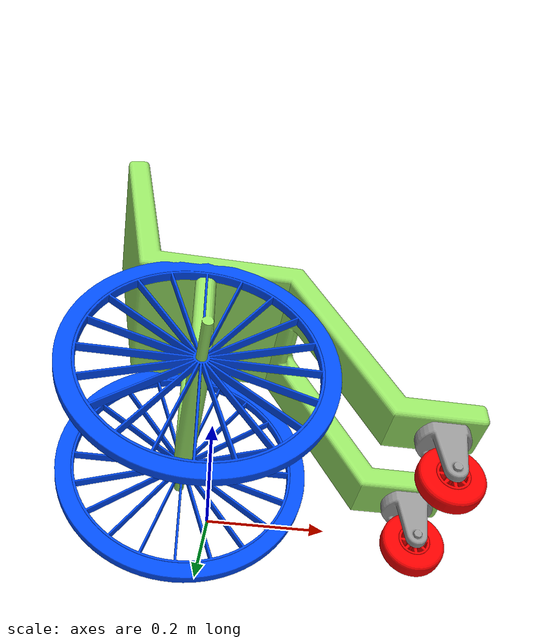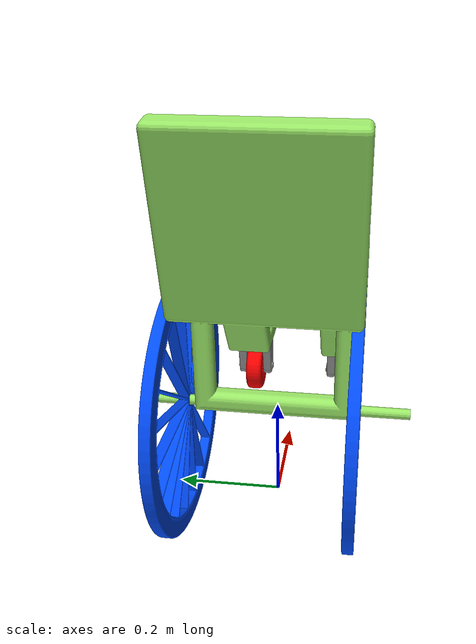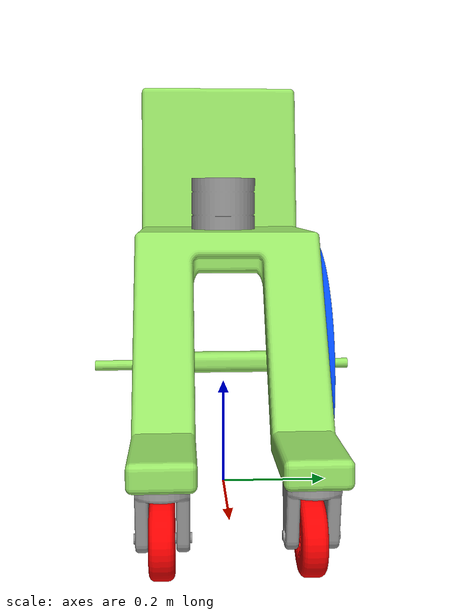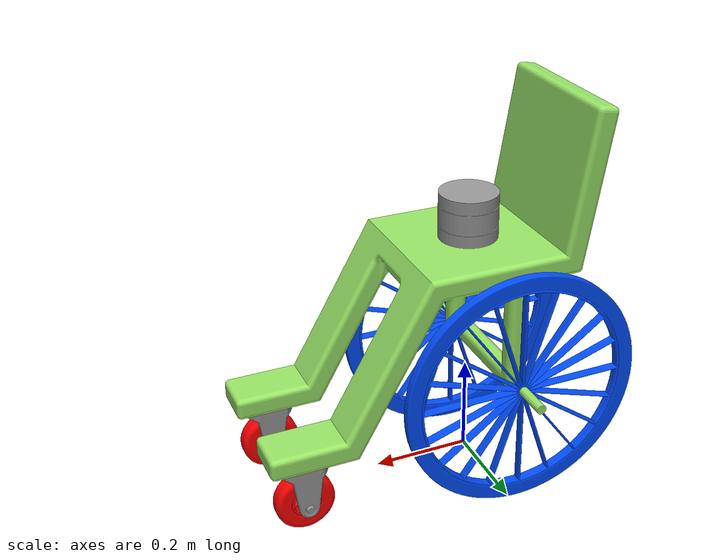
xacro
<?xml version="1.0"?>

<robot xmlns:xacro="http://ros.org/wiki/xacro" name="wheelchair">

  <!-- ====== Params ====== -->
  <xacro:property name="mesh_scale" value="0.001 0.001 0.001"/> <!-- mm -> m -->

  <!-- wheel geometry (from STL bbox estimate) -->
  <xacro:property name="rear_wheel_radius" value="0.2506"/>
  <xacro:property name="rear_wheel_width"  value="0.025"/>   <!-- collision -->
  <xacro:property name="caster_radius"     value="0.0600"/>
  <xacro:property name="caster_width"      value="0.04"/>   <!-- collision -->

  <!-- placements: TUNE THESE in RViz -->
  <xacro:property name="rear_wheel_x" value="-0.04"/>
  <xacro:property name="rear_wheel_y" value="0.16"/>
  <xacro:property name="rear_wheel_z" value="-0.225"/>

  <xacro:property name="caster_x" value="0.4"/>
  <xacro:property name="caster_y" value="-0.11"/>
  <xacro:property name="caster_z" value="-0.3"/>

  <!-- LiDAR shape-only params -->
  <xacro:property name="lidar_radius" value="0.060"/>  <!-- [m] collision용 실린더 반지름 -->
  <xacro:property name="lidar_height" value="0.100"/>  <!-- [m] collision용 실린더 높이 -->

  <!-- Inertia macro -->
  <xacro:include filename="inertia_utils.xacro"/>

  <!-- ====== Materials ====== -->

  <!-- light green (연두색) -->
  <material name="light_green">
    <color rgba="0.6 0.9 0.4 1.0"/>
  </material>

  <!-- red (빨간색) -->
  <material name="red">
    <color rgba="1.0 0.0 0.0 1.0"/>
  </material>

  <!-- gray (회색) -->
  <material name="gray">
    <color rgba="0.6 0.6 0.6 1.0"/>
  </material>

  <!-- blue (파란색) -->
  <material name="blue">
    <color rgba="0.0 0.3 1.0 1.0"/>
  </material>

  <!-- ====== Reference frame like pinky: base_footprint -> base_link (fixed) ====== -->
  <link name="base_footprint"/>

  <joint name="base_link_fixed_joint" type="fixed">
    <parent link="base_footprint"/>
    <child link="base_link"/>
    <!-- If you want base_link lifted from ground, change z here -->
    <origin xyz="0 0 0.45" rpy="0 0 0"/>
  </joint>

  <!-- ====== base_link (Chair) ====== -->
  <link name="base_link">
    <visual>
      <origin xyz="0 0 0" rpy="0 0 0"/>
      <geometry>
        <mesh filename="package://robot_description/mesh/Chair.stl" scale="${mesh_scale}"/>
      </geometry>
      <material name="light_green"/>
    </visual>

    <!-- collision -->
    <collision>
      <origin xyz="0.13 0 0.03" rpy="0 0 0"/>
      <geometry>
        <box size="0.70 0.32 0.65"/>
      </geometry>
    </collision>

    <xacro:inertial_from_catia_G
      m="38.846"
      x_mm="29.483" y_mm="0.0" z_mm="-6.536"
      Ixx="1.468" Iyy="2.963" Izz="1.895"
      Ixy="0.0" Ixz="0.172" Iyz="0.0"/>

  </link>

  <!-- LiDAR link/joint (shape only)                              -->
  <!-- - lidar_link를 센서 프레임으로 사용 가능 (예: scan frame)     -->
  <!-- - base_link에 fixed joint로 부착                             -->
  <!-- - visual은 STL(mesh)로, collision은 단순 실린더로 유지        -->

  <link name="lidar_link_mount">
    <visual>
      <origin xyz="0 0 0" rpy="0 0 0"/>
      <geometry>
        <mesh filename="package://robot_description/mesh/LiDAR.stl" scale="${mesh_scale}"/>
      </geometry>
      <material name="gray"/>
    </visual>

    <collision>
      <origin xyz="0 0 ${lidar_height/2}" rpy="0 0 0"/>
      <geometry>
        <cylinder radius="${lidar_radius}" length="${lidar_height}"/>
      </geometry>
    </collision>
    <xacro:inertial_from_catia_G
      m="1.352"
      x_mm="0.0" y_mm="0.0" z_mm="49.988"
      Ixx="0.002" Iyy="0.002" Izz="0.002"
      Ixy="0.0" Ixz="0.0" Iyz="0.0"/>
  </link>

  <joint name="lidar_joint" type="fixed">
    <parent link="base_link"/>
    <child link="lidar_link_mount"/>
    <origin xyz="0 0 0.040" rpy="0 0 0"/>
  </joint>

  <link name="laser_link"/>

  <joint name="laser_link_fixed_joint" type="fixed">
      <parent link="lidar_link_mount"/>
      <child link="laser_link"/>
      <origin xyz="0.0 0 0.03" rpy="0 0 0"/>
  </joint>

  <!-- ====== Rear wheels ====== -->
  <link name="left_rear_wheel_link">
    <visual>
      <origin xyz="0 0 0" rpy="0 0 0"/>
      <geometry>
        <mesh filename="package://robot_description/mesh/Wheel.stl" scale="${mesh_scale}"/>
      </geometry>
      <material name="blue"/>
    </visual>

    <collision>
      <origin xyz="0 0 0" rpy="${pi/2} 0 0"/>
      <geometry>
        <cylinder radius="${rear_wheel_radius}" length="${rear_wheel_width}"/>
      </geometry>
    </collision>
    <xacro:inertial_from_catia_G
      m="3.645"
      x_mm="-1.692" y_mm="10.0" z_mm="0.0"
      Ixx="0.083" Iyy="0.166" Izz="0.083"
      Ixy="0.0" Ixz="0.0" Iyz="0.0"/>
  </link>

  <joint name="left_rear_wheel_joint" type="continuous">
    <parent link="base_link"/>
    <child link="left_rear_wheel_link"/>
    <origin xyz="${rear_wheel_x} ${rear_wheel_y} ${rear_wheel_z}" rpy="0 0 0"/>
    <axis xyz="0 1 0"/>
  </joint>

  <link name="right_rear_wheel_link">
    <visual>
      <origin xyz="0 0 0" rpy="0 0 0"/>
      <geometry>
        <mesh filename="package://robot_description/mesh/Wheel.stl" scale="${mesh_scale}"/>
      </geometry>
      <material name="blue"/>
    </visual>

    <collision>
      <origin xyz="0 0 0" rpy="${pi/2} 0 0"/>
      <geometry>
        <cylinder radius="${rear_wheel_radius}" length="${rear_wheel_width}"/>
      </geometry>
    </collision>
    <xacro:inertial_from_catia_G
      m="3.645"
      x_mm="-1.692" y_mm="10.0" z_mm="0.0"
      Ixx="0.083" Iyy="0.166" Izz="0.083"
      Ixy="0.0" Ixz="0.0" Iyz="0.0"/>
  </link>

  <joint name="right_rear_wheel_joint" type="continuous">
    <parent link="base_link"/>
    <child link="right_rear_wheel_link"/>
    <origin xyz="${rear_wheel_x} ${-rear_wheel_y} ${rear_wheel_z}" rpy="0 0 0"/>
    <axis xyz="0 1 0"/>
  </joint>

  <!-- ====== Casters: bracket (swivel) + wheel (spin) ====== -->
  <link name="left_caster_bracket_link">
    <visual>
      <origin xyz="0 0 0" rpy="0 0 0"/>
      <geometry>
        <mesh filename="package://robot_description/mesh/caster_wheel_bracket.stl" scale="${mesh_scale}"/>
      </geometry>
      <material name="gray"/>
    </visual>

    <collision>
      <origin xyz="0 0 -0.05" rpy="0 0 0"/>
      <geometry>
        <box size="0.085 0.085 0.1"/>
      </geometry>
    </collision>
    <xacro:inertial_from_catia_G
      m="0.929"
      x_mm="-0.01248" y_mm="9.0" z_mm="-38.698"
      Ixx="0.002" Iyy="0.001" Izz="0.001"
      Ixy="0.0" Ixz="0.0" Iyz="-1.214e-7"/>
  </link>

  <joint name="left_caster_swivel_joint" type="continuous">
    <parent link="base_link"/>
    <child link="left_caster_bracket_link"/>
    <origin xyz="${caster_x} ${-caster_y} ${caster_z}" rpy="0 0 0"/>
    <axis xyz="0 0 1"/>
  </joint>

  <link name="left_caster_wheel_link">
    <visual>
      <origin xyz="0 0 0" rpy="0 0 0"/>
      <geometry>
        <mesh filename="package://robot_description/mesh/caster_wheel.stl" scale="${mesh_scale}"/>
      </geometry>
      <material name="red"/>
    </visual>

    <collision>
      <origin xyz="0 ${caster_radius/2} 0" rpy="${pi/2} 0 0"/>
      <geometry>
        <cylinder radius="${caster_radius}" length="${caster_width}"/>
      </geometry>
    </collision>
    <xacro:inertial_from_catia_G
      m="0.447"
      x_mm="0.0" y_mm="19.0" z_mm="0.0"
      Ixx="4.742e-4" Iyy="8.478e-4" Izz="4.742e-4"
      Ixy="0.0" Ixz="0.0" Iyz="0.0"/>
  </link>

  <joint name="left_caster_wheel_joint" type="continuous">
    <parent link="left_caster_bracket_link"/>
    <child link="left_caster_wheel_link"/>
    <origin xyz="0 ${-caster_width/2} -0.095" rpy="0 0 0"/>
    <axis xyz="0 1 0"/>
  </joint>

  <link name="right_caster_bracket_link">
    <visual>
      <origin xyz="0 0 0" rpy="0 0 0"/>
      <geometry>
        <mesh filename="package://robot_description/mesh/caster_wheel_bracket.stl" scale="${mesh_scale}"/>
      </geometry>
      <material name="gray"/>
    </visual>

    <collision>
      <origin xyz="0 0 -0.05" rpy="0 0 0"/>
      <geometry>
        <box size="0.085 0.085 0.1"/>
      </geometry>
    </collision>
    <xacro:inertial_from_catia_G
      m="0.929"
      x_mm="-0.01248" y_mm="9.0" z_mm="-38.698"
      Ixx="0.002" Iyy="0.001" Izz="0.001"
      Ixy="0.0" Ixz="0.0" Iyz="-1.214e-7"/>
  </link>

  <joint name="right_caster_swivel_joint" type="continuous">
    <parent link="base_link"/>
    <child link="right_caster_bracket_link"/>
    <origin xyz="${caster_x} ${caster_y} ${caster_z}" rpy="0 0 0"/>
    <axis xyz="0 0 1"/>
  </joint>

  <link name="right_caster_wheel_link">
    <visual>
      <origin xyz="0 0 0" rpy="0 0 0"/>
      <geometry>
        <mesh filename="package://robot_description/mesh/caster_wheel.stl" scale="${mesh_scale}"/>
      </geometry>
      <material name="red"/>
    </visual>

    <collision>
      <origin xyz="0 ${caster_radius/2} 0" rpy="${pi/2} 0 0"/>
      <geometry>
        <cylinder radius="${caster_radius}" length="${caster_width}"/>
      </geometry>
    </collision>
    <xacro:inertial_from_catia_G
      m="0.447"
      x_mm="0.0" y_mm="19.0" z_mm="0.0"
      Ixx="4.742e-4" Iyy="8.478e-4" Izz="4.742e-4"
      Ixy="0.0" Ixz="0.0" Iyz="0.0"/>
  </link>

  <joint name="right_caster_wheel_joint" type="continuous">
    <parent link="right_caster_bracket_link"/>
    <child link="right_caster_wheel_link"/>
    <origin xyz="0 ${-caster_width/2} -0.095" rpy="0 0 0"/>
    <axis xyz="0 1 0"/>
  </joint>

  <!-- ================= Gazebo friction/contact for wheels ================= -->
  <!-- Rear wheels: high traction -->
  <gazebo reference="left_rear_wheel_link">
    <mu1>1.2</mu1>
    <mu2>1.2</mu2>
    <slip1>0.001</slip1>
    <slip2>0.001</slip2>
    <kp>800000</kp>
    <kd>80</kd>
    <minDepth>0.001</minDepth>
    <maxVel>0.1</maxVel>
  </gazebo>

  <gazebo reference="right_rear_wheel_link">
    <mu1>1.2</mu1>
    <mu2>1.2</mu2>
    <slip1>0.001</slip1>
    <slip2>0.001</slip2>
    <kp>800000</kp>
    <kd>80</kd>
    <minDepth>0.001</minDepth>
    <maxVel>0.1</maxVel>
  </gazebo>

  <!-- Casters: lower traction + a bit more slip -->
  <gazebo reference="left_caster_wheel_link">
    <mu1>0.6</mu1>
    <mu2>0.6</mu2>
    <slip1>0.01</slip1>
    <slip2>0.01</slip2>
    <kp>600000</kp>
    <kd>60</kd>
    <minDepth>0.001</minDepth>
    <maxVel>0.1</maxVel>
  </gazebo>

  <gazebo reference="right_caster_wheel_link">
    <mu1>0.6</mu1>
    <mu2>0.6</mu2>
    <slip1>0.01</slip1>
    <slip2>0.01</slip2>
    <kp>600000</kp>
    <kd>60</kd>
    <minDepth>0.001</minDepth>
    <maxVel>0.1</maxVel>
  </gazebo>

</robot>

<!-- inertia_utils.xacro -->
<robot xmlns:xacro="http://www.ros.org/wiki/xacro">

  <xacro:macro name="inertial_from_catia_G"
               params="m x_mm y_mm z_mm Ixx Iyy Izz Ixy Ixz Iyz">
    <!-- mm -> m -->
    <xacro:property name="x" value="${x_mm/1000.0}"/>
    <xacro:property name="y" value="${y_mm/1000.0}"/>
    <xacro:property name="z" value="${z_mm/1000.0}"/>

    <!-- parallel-axis theorem -->
    <xacro:property name="ixx_o" value="${Ixx + m*(y*y + z*z)}"/>
    <xacro:property name="iyy_o" value="${Iyy + m*(x*x + z*z)}"/>
    <xacro:property name="izz_o" value="${Izz + m*(x*x + y*y)}"/>
    <xacro:property name="ixy_o" value="${Ixy - m*(x*y)}"/>
    <xacro:property name="ixz_o" value="${Ixz - m*(x*z)}"/>
    <xacro:property name="iyz_o" value="${Iyz - m*(y*z)}"/>

    <inertial>
      <origin xyz="${x} ${y} ${z}" rpy="0 0 0"/>
      <mass value="${m}"/>
      <inertia ixx="${ixx_o}" iyy="${iyy_o}" izz="${izz_o}"
               ixy="${ixy_o}" ixz="${ixz_o}" iyz="${iyz_o}"/>
    </inertial>
  </xacro:macro>

</robot>
